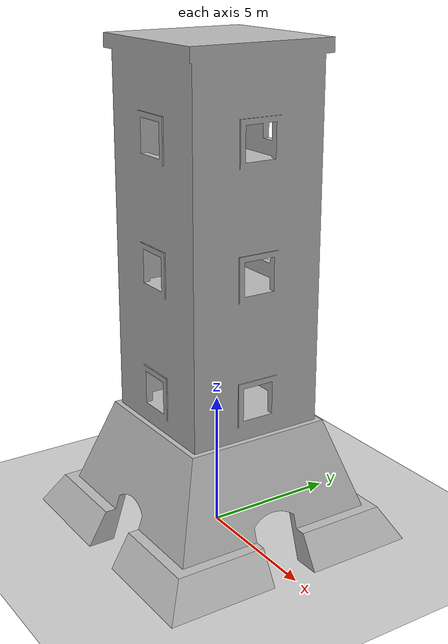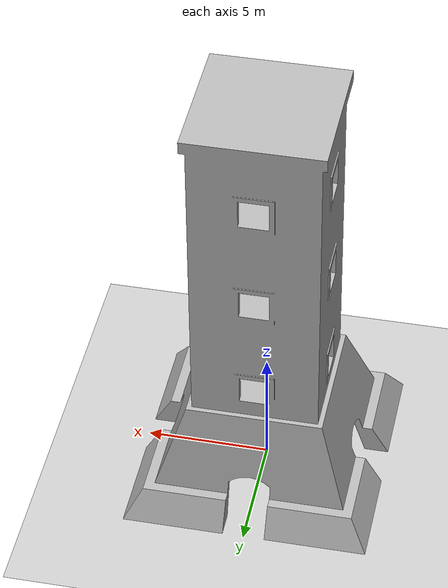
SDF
<?xml version="1.0" ?>
<sdf version="1.4">
  <world name="default">
    <include>
      <uri>model://ground_plane</uri>
    </include>
    <include>
      <uri>model://sun</uri>
    </include>

    <include>
      <uri>model://tower_1</uri>
      <pose>0 0 0 0 0 0</pose>
    </include>

    <!-- Only require one ROS interface plugin per world, as any other plugin can connect a Gazebo
        topic to a ROS topic (or vise versa). -->
    <plugin name="ros_interface_plugin" filename="librotors_gazebo_ros_interface_plugin.so"></plugin>

    <spherical_coordinates>
      <surface_model>EARTH_WGS84</surface_model>
      <latitude_deg>47.3667</latitude_deg>
      <longitude_deg>8.5500</longitude_deg>
      <elevation>500.0</elevation>
      <heading_deg>0</heading_deg>
    </spherical_coordinates>
    <physics name='default_physics' default='0' type='bullet'>
      <max_step_size>0.001</max_step_size>
      <real_time_factor>1</real_time_factor>
      <real_time_update_rate>1000</real_time_update_rate>
      <bullet>
        <solver>
          <iters>120</iters>
        </solver>
      </bullet>
    </physics>
  </world>
</sdf>

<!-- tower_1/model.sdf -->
<sdf version="1.5">
  <model name="tower">
    <static>true</static>

   <link name="link">
      <collision name="collision">
        <geometry>
          <mesh>
            <uri>model://tower_1/mesh/tower_3.dae</uri>
          </mesh>
        </geometry>
      </collision>
      <visual name="visual">
        <geometry>
          <mesh>
            <uri>model://tower_1/mesh/tower_3.dae</uri>
          </mesh>
        </geometry>
      </visual>
    </link>
  </model>
</sdf>
